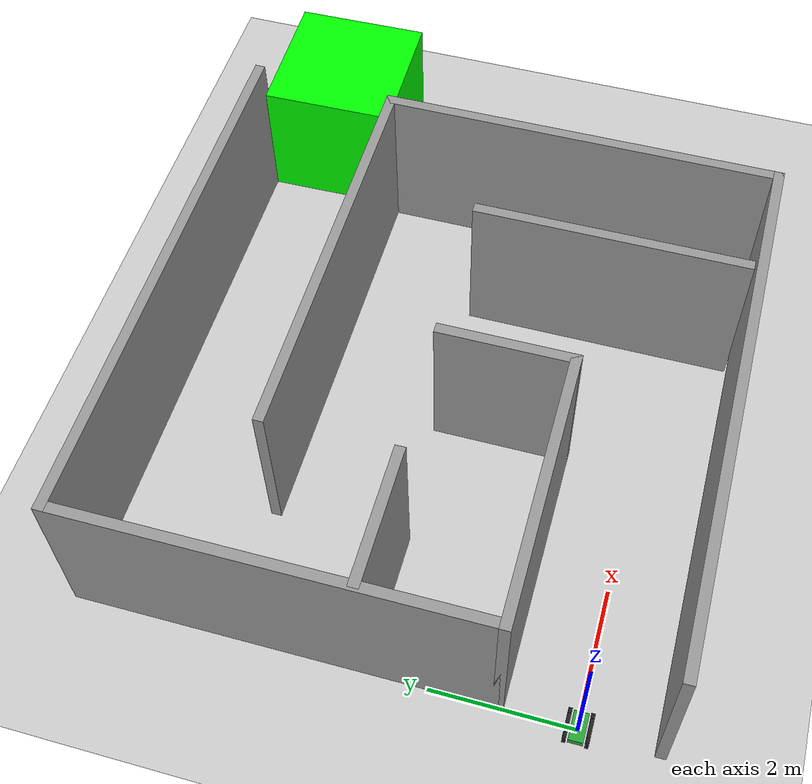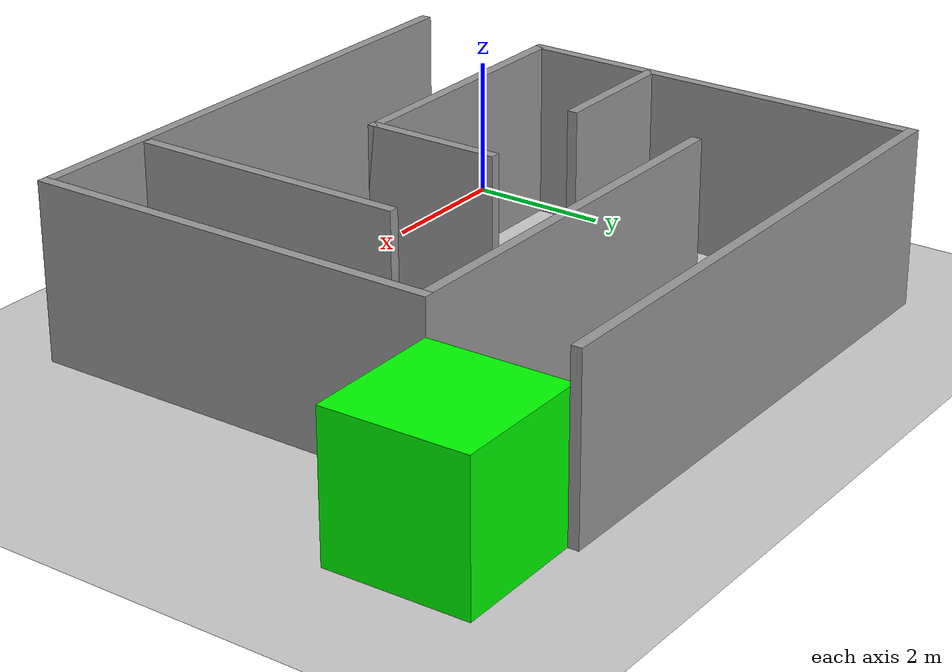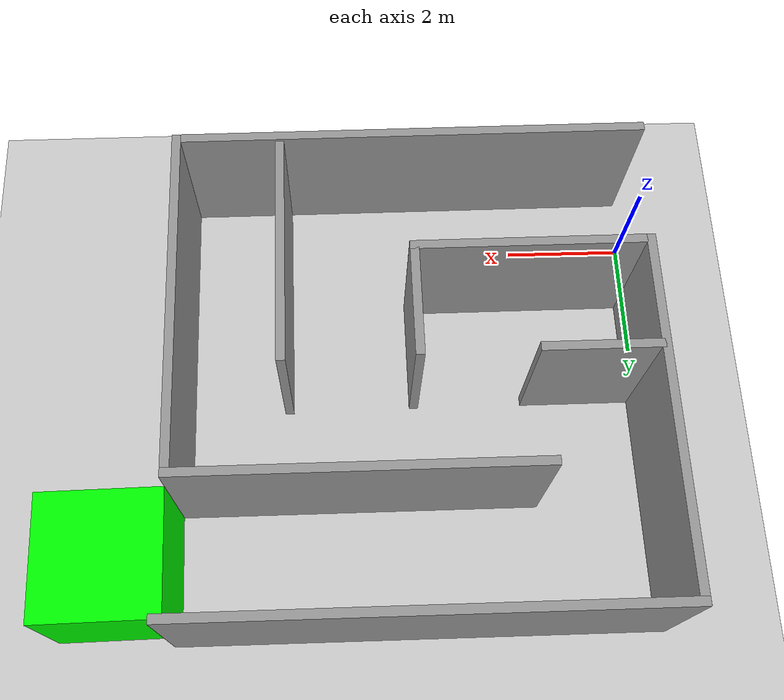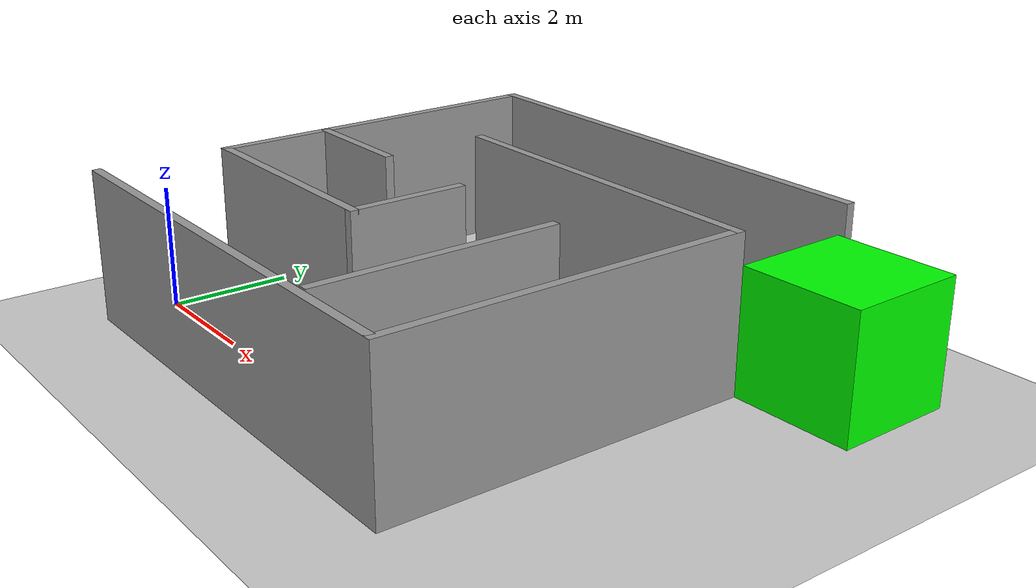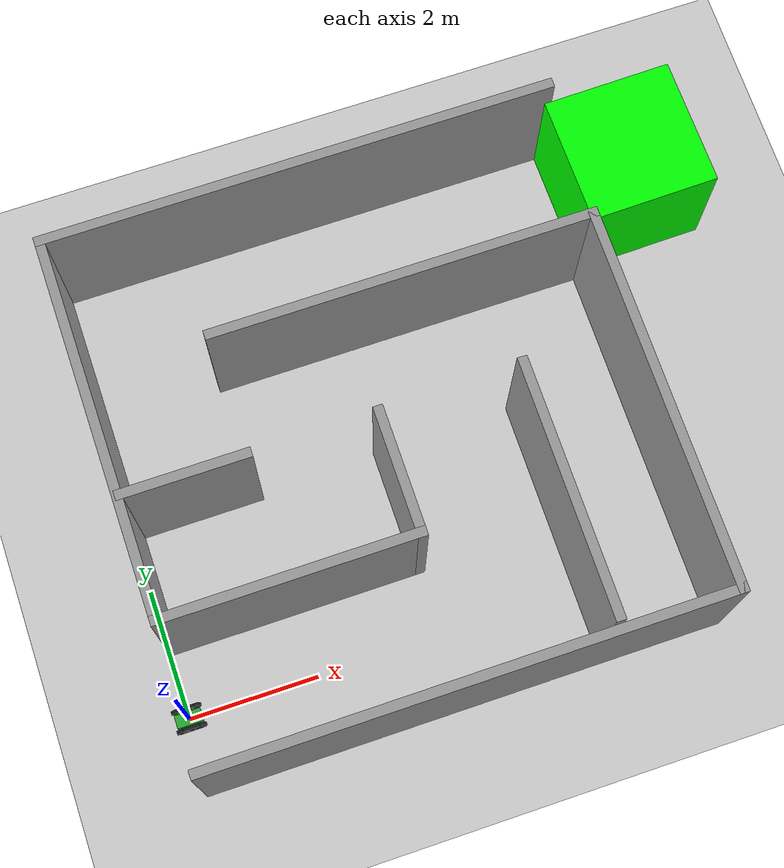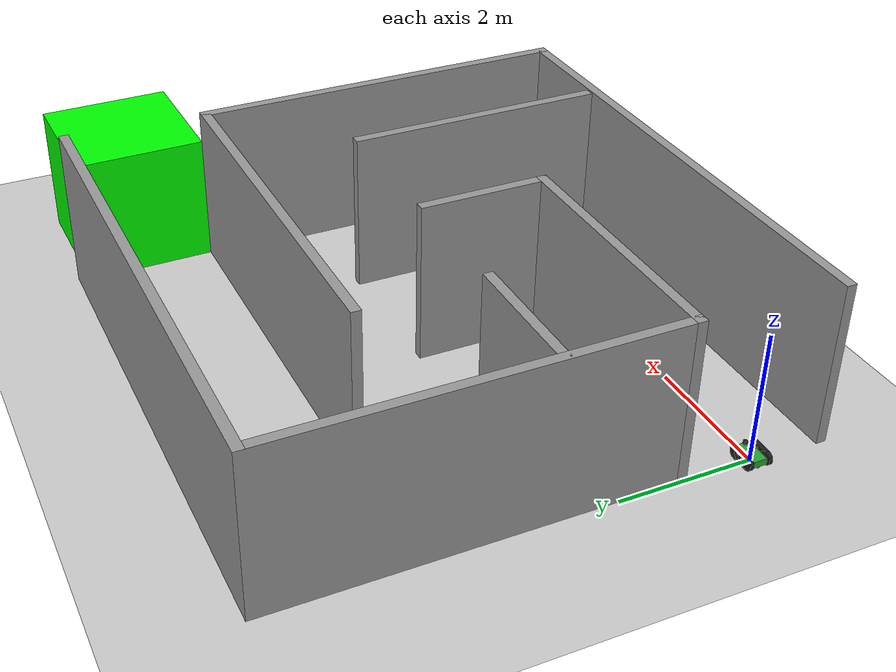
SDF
<sdf version="1.7">
 <world name="default">
  <light name="sun" type="directional">
   <pose>0 0 10 0 -0 0</pose>
   <diffuse>0.8 0.8 0.8 1</diffuse>
   <specular>0.2 0.2 0.2 1</specular>
   <attenuation>
    <range>1000</range>
    <constant>0.9</constant>
    <linear>0.01</linear>
    <quadratic>0.001</quadratic>
   </attenuation>
   <direction>-0.5 0.1 -0.9</direction>
   <spot><inner_angle>0</inner_angle><outer_angle>0</outer_angle><falloff>0</falloff></spot>
  </light>
  <model name="ground_plane">
   <static>1</static>
   <link name="link">
    <collision name="collision">
     <geometry><plane><normal>0 0 1</normal><size>100 100</size></plane></geometry>
     <surface>
      <contact><collide_bitmask>65535</collide_bitmask></contact>
      <friction><ode><mu>100</mu><mu2>50</mu2></ode></friction>
     </surface>
    </collision>
    <visual name="visual">
     <cast_shadows>0</cast_shadows>
     <geometry><plane><normal>0 0 1</normal><size>100 100</size></plane></geometry>
     <material>
      <script><uri>file://media/materials/scripts/gazebo.material</uri><name>Gazebo/Grey</name></script>
     </material>
    </visual>
   </link>
  </model>
  <gravity>0 0 -9.8</gravity>
  <magnetic_field>6e-06 2.3e-05 -4.2e-05</magnetic_field>
  <atmosphere type="adiabatic"/>
  <physics name="default_physics" default="0" type="ode">
   <max_step_size>0.001</max_step_size>
   <real_time_factor>1</real_time_factor>
   <real_time_update_rate>1000</real_time_update_rate>
  </physics>
  <scene><ambient>0.4 0.4 0.4 1</ambient><background>0.7 0.7 0.7 1</background><shadows>1</shadows></scene>
  <audio><device>default</device></audio>
  <spherical_coordinates>
   <surface_model>EARTH_WGS84</surface_model>
   <latitude_deg>0</latitude_deg>
   <longitude_deg>0</longitude_deg>
   <elevation>0</elevation>
   <heading_deg>0</heading_deg>
  </spherical_coordinates>
  <model name="small_maze">
   <pose>3.96296 2.91878 0 0 0 -1.56916</pose>
   <link name="Wall_11">
    <collision name="Wall_11_Collision">
     <geometry><box><size>6 0.15 2.5</size></box></geometry>
     <pose>0 0 1.25 0 -0 0</pose>
    </collision>
    <visual name="Wall_11_Visual">
     <pose>0 0 1.25 0 -0 0</pose>
     <geometry><box><size>6 0.15 2.5</size></box></geometry>
     <material>
      <script><uri>file://media/materials/scripts/gazebo.material</uri><name>Gazebo/Grey</name></script>
      <ambient>1 1 1 1</ambient>
     </material>
     <meta><layer>0</layer></meta>
    </visual>
    <pose>-1.85079 0.957737 0 0 -0 1.5708</pose>
   </link>
   <link name="Wall_12">
    <collision name="Wall_12_Collision">
     <geometry><box><size>6 0.15 2.5</size></box></geometry>
     <pose>0 0 1.25 0 -0 0</pose>
    </collision>
    <visual name="Wall_12_Visual">
     <pose>0 0 1.25 0 -0 0</pose>
     <geometry><box><size>6 0.15 2.5</size></box></geometry>
     <material>
      <script><uri>file://media/materials/scripts/gazebo.material</uri><name>Gazebo/Grey</name></script>
      <ambient>1 1 1 1</ambient>
     </material>
     <meta><layer>0</layer></meta>
    </visual>
    <pose>1.07421 3.88274 0 0 -0 0</pose>
   </link>
   <link name="Wall_13">
    <collision name="Wall_13_Collision">
     <geometry><box><size>8 0.15 2.5</size></box></geometry>
     <pose>0 0 1.25 0 -0 0</pose>
    </collision>
    <visual name="Wall_13_Visual">
     <pose>0 0 1.25 0 -0 0</pose>
     <geometry><box><size>8 0.15 2.5</size></box></geometry>
     <material>
      <script><uri>file://media/materials/scripts/gazebo.material</uri><name>Gazebo/Grey</name></script>
      <ambient>1 1 1 1</ambient>
     </material>
     <meta><layer>0</layer></meta>
    </visual>
    <pose>3.99921 -0.042263 0 0 -0 -1.5708</pose>
   </link>
   <link name="Wall_15">
    <collision name="Wall_15_Collision">
     <geometry><box><size>4 0.15 2.5</size></box></geometry>
     <pose>0 0 1.25 0 -0 0</pose>
    </collision>
    <visual name="Wall_15_Visual">
     <pose>0 0 1.25 0 -0 0</pose>
     <geometry><box><size>4 0.15 2.5</size></box></geometry>
     <material>
      <script><uri>file://media/materials/scripts/gazebo.material</uri><name>Gazebo/Grey</name></script>
      <ambient>1 1 1 1</ambient>
     </material>
     <meta><layer>0</layer></meta>
    </visual>
    <pose>1.8936 2.14439 0 0 -0 0</pose>
   </link>
   <link name="Wall_4">
    <collision name="Wall_4_Collision">
     <geometry><box><size>8 0.15 2.5</size></box></geometry>
     <pose>0 0 1.25 0 -0 0</pose>
    </collision>
    <visual name="Wall_4_Visual">
     <pose>0 0 1.25 0 -0 0</pose>
     <geometry><box><size>8 0.15 2.5</size></box></geometry>
     <material>
      <script><uri>file://media/materials/scripts/gazebo.material</uri><name>Gazebo/Grey</name></script>
      <ambient>1 1 1 1</ambient>
     </material>
     <meta><layer>0</layer></meta>
    </visual>
    <pose>-3.99921 0.042263 0 0 -0 -1.5708</pose>
   </link>
   <link name="Wall_5">
    <collision name="Wall_5_Collision">
     <geometry><box><size>6 0.15 2.5</size></box></geometry>
     <pose>0 0 1.25 0 -0 0</pose>
    </collision>
    <visual name="Wall_5_Visual">
     <pose>0 0 1.25 0 -0 0</pose>
     <geometry><box><size>6 0.15 2.5</size></box></geometry>
     <material>
      <script><uri>file://media/materials/scripts/gazebo.material</uri><name>Gazebo/Grey</name></script>
      <ambient>1 1 1 1</ambient>
     </material>
     <meta><layer>0</layer></meta>
    </visual>
    <pose>-1.07421 -3.88274 0 0 -0 0</pose>
   </link>
   <link name="Wall_6">
    <collision name="Wall_6_Collision">
     <geometry><box><size>4 0.15 2.5</size></box></geometry>
     <pose>0 0 1.25 0 -0 0</pose>
    </collision>
    <visual name="Wall_6_Visual">
     <pose>0 0 1.25 0 -0 0</pose>
     <geometry><box><size>4 0.15 2.5</size></box></geometry>
     <material>
      <script><uri>file://media/materials/scripts/gazebo.material</uri><name>Gazebo/Grey</name></script>
      <ambient>1 1 1 1</ambient>
     </material>
     <meta><layer>0</layer></meta>
    </visual>
    <pose>1.85079 -1.95774 0 0 -0 1.5708</pose>
   </link>
   <link name="Wall_7">
    <collision name="Wall_7_Collision">
     <geometry><box><size>2 0.15 2.5</size></box></geometry>
     <pose>0 0 1.25 0 -0 0</pose>
    </collision>
    <visual name="Wall_7_Visual">
     <pose>0 0 1.25 0 -0 0</pose>
     <geometry><box><size>2 0.15 2.5</size></box></geometry>
     <material>
      <script><uri>file://media/materials/scripts/gazebo.material</uri><name>Gazebo/Grey</name></script>
      <ambient>1 1 1 1</ambient>
     </material>
     <meta><layer>0</layer></meta>
    </visual>
    <pose>0.925794 -0.032737 0 0 -0 3.14159</pose>
   </link>
   <link name="Wall_9">
    <collision name="Wall_9_Collision">
     <geometry><box><size>2 0.15 2.5</size></box></geometry>
     <pose>0 0 1.25 0 -0 0</pose>
    </collision>
    <visual name="Wall_9_Visual">
     <pose>0 0 1.25 0 -0 0</pose>
     <geometry><box><size>2 0.15 2.5</size></box></geometry>
     <material>
      <script><uri>file://media/materials/scripts/gazebo.material</uri><name>Gazebo/Grey</name></script>
      <ambient>1 1 1 1</ambient>
     </material>
     <meta><layer>0</layer></meta>
    </visual>
    <pose>0.002794 -2.91624 0 0 -0 1.5708</pose>
   </link>
   <static>1</static>
  </model>
  <model name="green_box">
   <link name="link_0">
    <inertial>
     <mass>100</mass>
     <inertia><ixx>66.6667</ixx><ixy>0</ixy><ixz>0</ixz><iyy>66.6667</iyy><iyz>0</iyz><izz>66.6667</izz></inertia>
    </inertial>
    <pose>-0.018872 -0.127453 0.5 0 -0 0</pose>
    <visual name="visual">
     <geometry><box><size>2 2 2</size></box></geometry>
     <material>
      <lighting>1</lighting>
      <script><uri>file://media/materials/scripts/gazebo.material</uri><name>Gazebo/Grey</name></script>
      <shader type="vertex"><normal_map>__default__</normal_map></shader>
      <ambient>0 1 0 1</ambient>
      <diffuse>0 1 0 1</diffuse>
      <specular>0 1 0 1</specular>
      <emissive>0 0 0 1</emissive>
     </material>
    </visual>
    <collision name="collision">
     <geometry><box><size>2 2 2</size></box></geometry>
     <surface>
      <friction>
       <ode><mu>1</mu><mu2>1</mu2><fdir1>0 0 0</fdir1><slip1>0</slip1><slip2>0</slip2></ode>
       <torsional>
        <coefficient>1</coefficient>
        <patch_radius>0</patch_radius>
        <surface_radius>0</surface_radius>
        <use_patch_radius>1</use_patch_radius>
        <ode><slip>0</slip></ode>
       </torsional>
      </friction>
      <bounce><restitution_coefficient>0</restitution_coefficient><threshold>1e+06</threshold></bounce>
      <contact>
       <collide_without_contact>0</collide_without_contact>
       <collide_without_contact_bitmask>1</collide_without_contact_bitmask>
       <collide_bitmask>1</collide_bitmask>
       <ode>
        <soft_cfm>0</soft_cfm>
        <soft_erp>0.2</soft_erp>
        <kp>1e+13</kp>
        <kd>1</kd>
        <max_vel>0.01</max_vel>
        <min_depth>0</min_depth>
       </ode>
       <bullet>
        <split_impulse>1</split_impulse>
        <split_impulse_penetration_threshold>-0.01</split_impulse_penetration_threshold>
        <soft_cfm>0</soft_cfm>
        <soft_erp>0.2</soft_erp>
        <kp>1e+13</kp>
        <kd>1</kd>
       </bullet>
      </contact>
     </surface>
    </collision>
   </link>
   <static>0</static>
   <pose>8.91749 5.99234 0.5 0 -0 0.016839</pose>
  </model>
  <model name="diffbot">
   <link name="robot_footprint">
    <inertial>
     <pose>0.001656 0.000331 0.000331 0 -0 0</pose>
     <mass>15.1</mass>
     <inertia>
      <ixx>0.100499</ixx>
      <ixy>-0.00124172</ixy>
      <ixz>-0.00124187</ixz>
      <iyy>0.106459</iyy>
      <iyz>-0.000248344</iyz>
      <izz>0.106459</izz>
     </inertia>
    </inertial>
    <collision name="robot_footprint_fixed_joint_lump__collision_collision">
     <geometry><box><size>0.4 0.2 0.1</size></box></geometry>
    </collision>
    <collision name="robot_footprint_fixed_joint_lump__back_caster_collision_collision_1">
     <pose>-0.15 0 -0.05 0 -0 0</pose>
     <geometry><sphere><radius>0.0499</radius></sphere></geometry>
    </collision>
    <collision name="robot_footprint_fixed_joint_lump__front_caster_collision_collision_2">
     <pose>0.15 0 -0.05 0 -0 0</pose>
     <geometry><sphere><radius>0.0499</radius></sphere></geometry>
    </collision>
    <collision name="robot_footprint_fixed_joint_lump__camera_colision_collision_3">
     <pose>0.2 0 0 0 -0 0</pose>
     <geometry><box><size>0.05 0.05 0.05</size></box></geometry>
    </collision>
    <collision name="robot_footprint_fixed_joint_lump__hokuyo_colision_collision_4">
     <pose>0.15 0 0.1 0 -0 0</pose>
     <geometry><box><size>0.1 0.1 0.1</size></box></geometry>
    </collision>
    <visual name="robot_footprint_fixed_joint_lump__chassis_visual_visual">
     <geometry><box><size>0.4 0.2 0.1</size></box></geometry>
     <material>
      <script><name>Gazebo/Green</name><uri>file://media/materials/scripts/gazebo.material</uri></script>
     </material>
    </visual>
    <visual name="robot_footprint_fixed_joint_lump__back_caster_visual_visual_1">
     <pose>-0.15 0 -0.05 0 -0 0</pose>
     <geometry><sphere><radius>0.05</radius></sphere></geometry>
    </visual>
    <visual name="robot_footprint_fixed_joint_lump__front_caster_visual_visual_2">
     <pose>0.15 0 -0.05 0 -0 0</pose>
     <geometry><sphere><radius>0.05</radius></sphere></geometry>
    </visual>
    <visual name="robot_footprint_fixed_joint_lump__camera_visual_visual_3">
     <pose>0.2 0 0 0 -0 0</pose>
     <geometry><box><size>0.05 0.05 0.05</size></box></geometry>
     <material>
      <script><name>Gazebo/Gray</name><uri>file://media/materials/scripts/gazebo.material</uri></script>
     </material>
    </visual>
    <visual name="robot_footprint_fixed_joint_lump__hokuyo_visual_visual_4">
     <pose>0.15 0 0.1 0 -0 0</pose>
     <geometry><box><size>0.05 0.05 0.05</size></box></geometry>
     <material>
      <script><name>Gazebo/Black</name><uri>file://media/materials/scripts/gazebo.material</uri></script>
     </material>
    </visual>
    <visual name="robot_footprint_fixed_joint_lump__left_track_visual_visual_5">
     <pose>0 0.15 0 1.5708 -0 1.5708</pose>
     <geometry><box><size>0.05 0.2 0.26</size></box></geometry>
     <material>
      <script><name>Gazebo/Black</name><uri>file://media/materials/scripts/gazebo.material</uri></script>
     </material>
    </visual>
    <visual name="robot_footprint_fixed_joint_lump__left_track_visual_1_visual_6">
     <pose>0.13 0.15 0 1.5708 -0 0</pose>
     <geometry><cylinder><length>0.05</length><radius>0.1</radius></cylinder></geometry>
     <material>
      <script><name>Gazebo/Black</name><uri>file://media/materials/scripts/gazebo.material</uri></script>
     </material>
    </visual>
    <visual name="robot_footprint_fixed_joint_lump__left_track_visual_2_visual_7">
     <pose>-0.13 0.15 0 1.5708 -0 0</pose>
     <geometry><cylinder><length>0.05</length><radius>0.1</radius></cylinder></geometry>
     <material>
      <script><name>Gazebo/Black</name><uri>file://media/materials/scripts/gazebo.material</uri></script>
     </material>
    </visual>
    <visual name="robot_footprint_fixed_joint_lump__right_track_visual_visual_8">
     <pose>0 -0.15 0 1.5708 -0 1.5708</pose>
     <geometry><box><size>0.05 0.2 0.26</size></box></geometry>
     <material>
      <script><name>Gazebo/Black</name><uri>file://media/materials/scripts/gazebo.material</uri></script>
     </material>
    </visual>
    <visual name="robot_footprint_fixed_joint_lump__right_track_visual_1_visual_9">
     <pose>0.13 -0.15 0 1.5708 -0 0</pose>
     <geometry><cylinder><length>0.05</length><radius>0.1</radius></cylinder></geometry>
     <material>
      <script><name>Gazebo/Black</name><uri>file://media/materials/scripts/gazebo.material</uri></script>
     </material>
    </visual>
    <visual name="robot_footprint_fixed_joint_lump__right_track_visual_2_visual_10">
     <pose>-0.13 -0.15 0 1.5708 -0 0</pose>
     <geometry><cylinder><length>0.05</length><radius>0.1</radius></cylinder></geometry>
     <material>
      <script><name>Gazebo/Black</name><uri>file://media/materials/scripts/gazebo.material</uri></script>
     </material>
    </visual>
    <sensor name="camera_sensor" type="camera">
     <update_rate>30</update_rate>
     <always_on>1</always_on>
     <camera name="camera">
      <horizontal_fov>1.39626</horizontal_fov>
      <image><width>800</width><height>800</height><format>R8G8B8</format></image>
      <clip><near>0.02</near><far>300</far></clip>
      <distortion><k1>0</k1><k2>0</k2><k3>0</k3><p1>0</p1><p2>0</p2><center>0.5 0.5</center></distortion>
     </camera>
     <plugin name="camera_controller" filename="libgazebo_ros_camera.so">
      <ros>
       <namespace>/diffbot</namespace>
       <argument>camera/image_raw:=/diffbot/camera/image</argument>
       <argument>camera/camera_info:=/diffbot/camera/image/camera_info</argument>
      </ros>
      <camera_name>camera_sensor</camera_name>
      <frame_name>robot_footprint</frame_name>
      <hack_baseline>0.07</hack_baseline>
     </plugin>
     <pose>0.2 0 0 0 -0 0</pose>
    </sensor>
    <sensor name="head_hokuyo_sensor" type="ray">
     <visualize>0</visualize>
     <update_rate>40</update_rate>
     <ray>
      <scan>
       <horizontal>
        <samples>720</samples>
        <resolution>1</resolution>
        <min_angle>-1.5708</min_angle>
        <max_angle>1.5708</max_angle>
       </horizontal>
       <vertical><samples>1</samples><min_angle>0</min_angle><max_angle>0</max_angle></vertical>
      </scan>
      <range><min>0.1</min><max>30</max><resolution>0.01</resolution></range>
      <noise><type>gaussian</type><mean>0</mean><stddev>0.01</stddev></noise>
     </ray>
     <update_rate>30</update_rate>
     <plugin name="gazebo_ros_head_hokuyo_controller" filename="libgazebo_ros_ray_sensor.so">
      <ros><namespace>/diffbot</namespace><argument>~/out:=scan</argument></ros>
      <output_type>sensor_msgs/LaserScan</output_type>
     </plugin>
     <pose>0.15 0 0.1 0 -0 0</pose>
    </sensor>
   </link>
   <joint name="front_left_wheel_joint" type="revolute">
    <pose relative_to="robot_footprint">0 0.15 0 0 -0 0</pose>
    <parent>robot_footprint</parent>
    <child>front_left_wheel</child>
    <axis>
     <xyz>0 1 0</xyz>
     <limit><effort>10000</effort><velocity>1000</velocity><lower>-1e+16</lower><upper>1e+16</upper></limit>
     <dynamics>
      <damping>1</damping>
      <friction>1</friction>
      <spring_reference>0</spring_reference>
      <spring_stiffness>0</spring_stiffness>
     </dynamics>
    </axis>
   </joint>
   <link name="front_left_wheel">
    <pose relative_to="front_left_wheel_joint">0 0 0 0 -0 0</pose>
    <inertial>
     <pose>0 0 0 -0 1.5707 1.5707</pose>
     <mass>8</mass>
     <inertia><ixx>0.1</ixx><ixy>0</ixy><ixz>0</ixz><iyy>0.1</iyy><iyz>0</iyz><izz>0.1</izz></inertia>
    </inertial>
    <collision name="front_left_wheel_collision">
     <pose>0 0 0 1.57089 1.57079 -3.14159</pose>
     <geometry><cylinder><length>0.05</length><radius>0.1</radius></cylinder></geometry>
    </collision>
   </link>
   <joint name="front_right_wheel_joint" type="revolute">
    <pose relative_to="robot_footprint">0 -0.15 0 0 -0 0</pose>
    <parent>robot_footprint</parent>
    <child>front_right_wheel</child>
    <axis>
     <xyz>0 1 0</xyz>
     <limit><effort>10000</effort><velocity>1000</velocity><lower>-1e+16</lower><upper>1e+16</upper></limit>
     <dynamics>
      <damping>1</damping>
      <friction>1</friction>
      <spring_reference>0</spring_reference>
      <spring_stiffness>0</spring_stiffness>
     </dynamics>
    </axis>
   </joint>
   <link name="front_right_wheel">
    <pose relative_to="front_right_wheel_joint">0 0 0 0 -0 0</pose>
    <inertial>
     <pose>0 0 0 -0 1.5707 1.5707</pose>
     <mass>8</mass>
     <inertia><ixx>0.1</ixx><ixy>0</ixy><ixz>0</ixz><iyy>0.1</iyy><iyz>0</iyz><izz>0.1</izz></inertia>
    </inertial>
    <collision name="front_right_wheel_collision">
     <pose>0 0 0 1.57089 1.57079 -3.14159</pose>
     <geometry><cylinder><length>0.05</length><radius>0.1</radius></cylinder></geometry>
    </collision>
   </link>
   <static>0</static>
   <plugin name="diff_drive" filename="libgazebo_ros_diff_drive.so">
    <ros><namespace>/diffbot</namespace></ros>
    <left_joint>front_left_wheel_joint</left_joint>
    <right_joint>front_right_wheel_joint</right_joint>
    <wheel_separation>0.4</wheel_separation>
    <wheel_diameter>0.2</wheel_diameter>
    <max_wheel_torque>10</max_wheel_torque>
    <max_wheel_acceleration>1.0</max_wheel_acceleration>
    <publish_odom>1</publish_odom>
    <publish_odom_tf>1</publish_odom_tf>
    <publish_wheel_tf>1</publish_wheel_tf>
    <odometry_frame>odom</odometry_frame>
    <robot_base_frame>robot_footprint</robot_base_frame>
   </plugin>
   <pose>-0.000313 -0.002251 0.099997 2e-05 -7.2e-05 -0.00061</pose>
  </model>
 </world>
</sdf>
